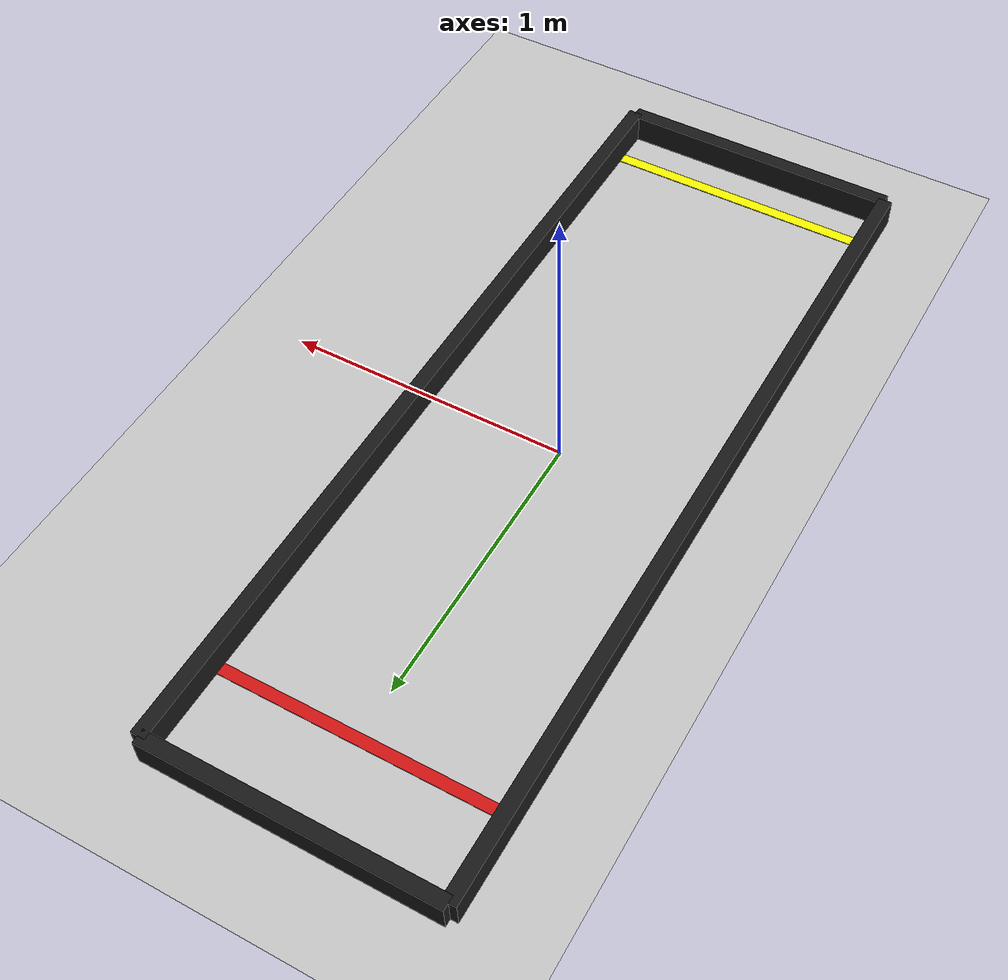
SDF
<?xml version="1.0"?>
<sdf version="1.6">
  <world name="autonomous_arena_world">

    <!-- ===== 1. LIGHTING & PHYSICS ===== -->
    <include><uri>model://sun</uri></include>
    <include><uri>model://ground_plane</uri></include>

    <plugin name="gazebo_ros_state" filename="libgazebo_ros_state.so">
      <ros>
        <namespace>/</namespace>
      </ros>
      <update_rate>30.0</update_rate>
    </plugin>

    <physics name="default_physics" type="ode">
      <max_step_size>0.001</max_step_size>
      <real_time_factor>1.0</real_time_factor>
      <real_time_update_rate>1000.0</real_time_update_rate>
    </physics>

    <!-- camera: behind start line, looking along the arena (+Y) -->
    <gui>
      <camera name="user_camera">
        <pose>0 -3.4 2.4 0 0.6 1.5708</pose>
      </camera>
    </gui>

    <!-- ===== 2. ARENA: interior 1.0 m (X) x 3.0 m (Y), 10 cm tall walls ===== -->
    <model name="wall_north">
      <static>true</static>
      <pose>0.0 1.5 0.05 0 0 0</pose>
      <link name="link">
        <collision name="collision"><geometry><box><size>1.0 0.05 0.1</size></box></geometry></collision>
        <visual name="visual">
          <geometry><box><size>1.0 0.05 0.1</size></box></geometry>
          <material><ambient>0.1 0.1 0.1 1</ambient><diffuse>0.1 0.1 0.1 1</diffuse></material>
        </visual>
      </link>
    </model>

    <model name="wall_south">
      <static>true</static>
      <pose>0.0 -1.5 0.05 0 0 0</pose>
      <link name="link">
        <collision name="collision"><geometry><box><size>1.0 0.05 0.1</size></box></geometry></collision>
        <visual name="visual">
          <geometry><box><size>1.0 0.05 0.1</size></box></geometry>
          <material><ambient>0.1 0.1 0.1 1</ambient><diffuse>0.1 0.1 0.1 1</diffuse></material>
        </visual>
      </link>
    </model>

    <model name="wall_east">
      <static>true</static>
      <pose>0.5 0.0 0.05 0 0 0</pose>
      <link name="link">
        <collision name="collision"><geometry><box><size>0.05 3.0 0.1</size></box></geometry></collision>
        <visual name="visual">
          <geometry><box><size>0.05 3.0 0.1</size></box></geometry>
          <material><ambient>0.1 0.1 0.1 1</ambient><diffuse>0.1 0.1 0.1 1</diffuse></material>
        </visual>
      </link>
    </model>

    <model name="wall_west">
      <static>true</static>
      <pose>-0.5 0.0 0.05 0 0 0</pose>
      <link name="link">
        <collision name="collision"><geometry><box><size>0.05 3.0 0.1</size></box></geometry></collision>
        <visual name="visual">
          <geometry><box><size>0.05 3.0 0.1</size></box></geometry>
          <material><ambient>0.1 0.1 0.1 1</ambient><diffuse>0.1 0.1 0.1 1</diffuse></material>
        </visual>
      </link>
    </model>

    <model name="start_line">
      <static>true</static>
      <pose>0.0 -1.35 0.001 0 0 0</pose>
      <link name="link">
        <visual name="visual">
          <geometry><box><size>0.95 0.04 0.002</size></box></geometry>
          <material><ambient>1 1 0 1</ambient><diffuse>1 1 0 1</diffuse></material>
        </visual>
      </link>
    </model>

    <model name="finish_line">
      <static>true</static>
      <pose>0.0 1.175 0.001 0 0 0</pose>
      <link name="link">
        <visual name="visual">
          <geometry><box><size>0.95 0.04 0.002</size></box></geometry>
          <!-- same red as the red obstacles on purpose -->
          <material><ambient>0.85 0.08 0.08 1</ambient><diffuse>0.85 0.08 0.08 1</diffuse></material>
        </visual>
      </link>
    </model>

  </world>
</sdf>
